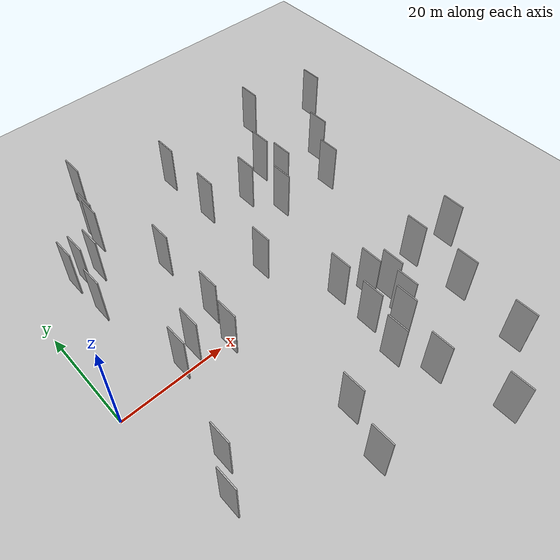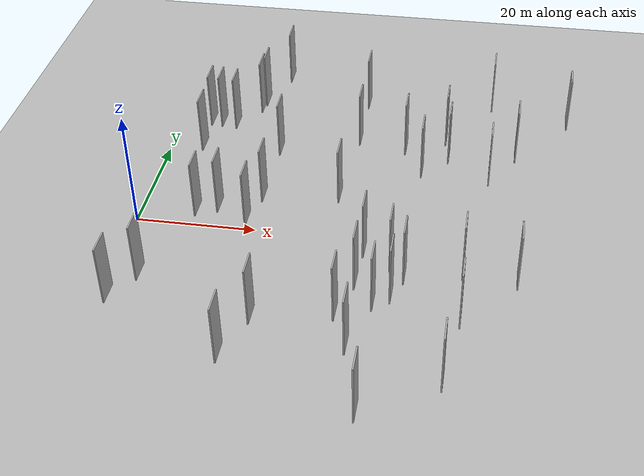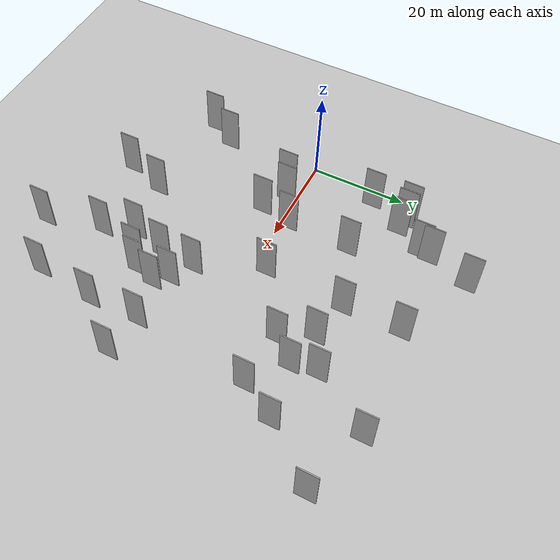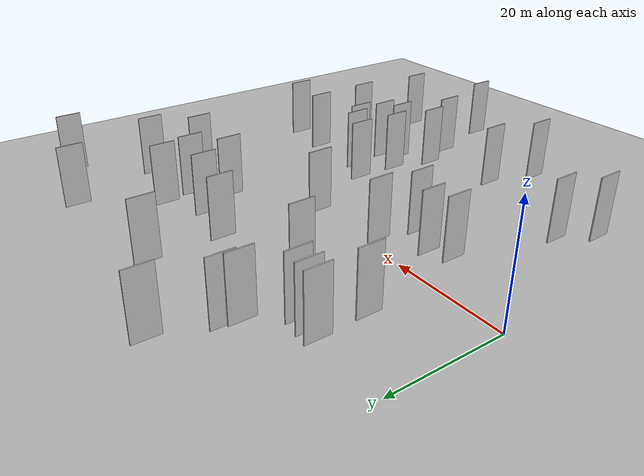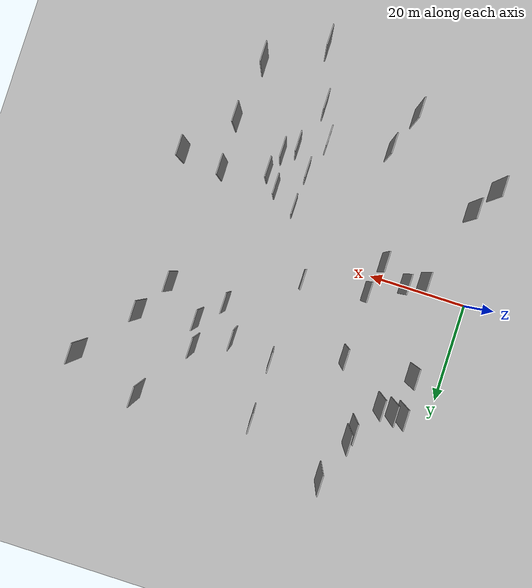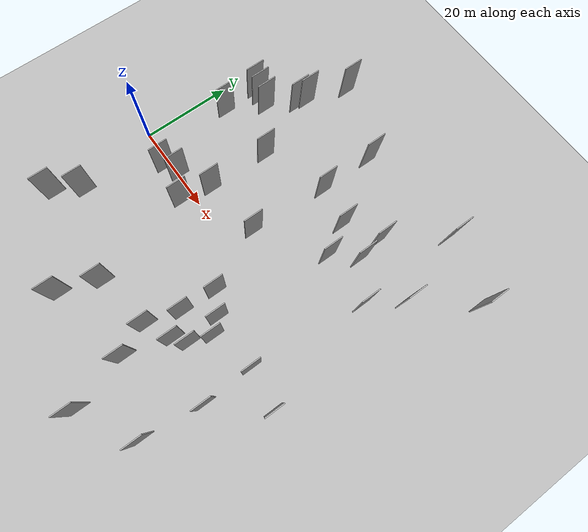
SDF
<?xml version="1.0" encoding="utf-8"?>

<sdf version="1.6">

   <world name="default">

      <gui fullscreen="0">

         <camera name="user_camera">

            <pose>-15 0 4.57585 0 0 0</pose>

            <view_controller>orbit</view_controller>

         </camera>

      </gui>

      <scene>

         <sky>

           <clouds>

             <speed>12</speed>

           </clouds>

         </sky>

         <ambient>0.4 0.4 0.4 1</ambient>

         <background>0.7 0.7 0.7 1</background>

         <shadows>1</shadows>

      </scene>

      <gravity>0 0 -9.8066</gravity>

      <magnetic_field>6e-06 2.3e-05 -4.2e-05</magnetic_field>

      <physics default="0" name="default_physics" type="ode">

         <ode>

            <solver>

               <type>quick</type>

               <iters>10</iters>

               <sor>1.0</sor>

               <use_dynamic_moi_rescaling>0</use_dynamic_moi_rescaling>

            </solver>

            <constraints>

               <cfm>0</cfm>

               <erp>0.2</erp>

               <contact_max_correcting_vel>100</contact_max_correcting_vel>

               <contact_surface_layer>0.001</contact_surface_layer>

            </constraints>

         </ode>

         <max_step_size>0.004</max_step_size>

         <real_time_factor>1</real_time_factor>

         <real_time_update_rate>250</real_time_update_rate>

      </physics>

      <light name="sun" type="directional">

         <cast_shadows>1</cast_shadows>

         <pose>0 0 10 0 0 0</pose>

         <diffuse>0.8 0.8 0.8 1</diffuse>

         <specular>0.2 0.2 0.2 1</specular>

         <attenuation>

            <range>1000</range>

            <constant>0.9</constant>

            <linear>0.01</linear>

            <quadratic>0.001</quadratic>

         </attenuation>

         <direction>-0.5 0.1 -0.9</direction>

      </light>

      <include>

         <name>ground_plane_1</name>

         <uri>model://HANNAS_ground_plane</uri>

         <pose>0 0 0  0 0 0</pose>

      </include>

      <include>

         <name>ground_plane_2</name>

         <uri>model://HANNAS_ground_plane</uri>

         <pose>100 0 0  0 0 0</pose>

      </include>

      <model name="HANNAS_wall_1">

         <static>1</static>

         <pose frame="">24.9334 -24.1360 5.0 0.000000 0.000000 1.570796</pose>

         <link name="link">

            <pose frame="">0 0 5.00 0 0 0</pose>

            <collision name="collision">

               <geometry>

                  <box>

                     <size>4.00 0.2 10.00</size>

                  </box>

               </geometry>

               <max_contacts>10</max_contacts>

               <surface>

                  <contact>

                     <ode/>

                  </contact>

                  <bounce/>

                  <friction>

                     <torsional>

                        <ode/>

                     </torsional>

                     <ode/>

                  </friction>

               </surface>

            </collision>

            <visual name="visual">

               <cast_shadows>0</cast_shadows>

               <geometry>

                  <box>

                     <size>4.00 0.2 10.00</size>

                  </box>

               </geometry>

               <material>

                  <script>

                     <uri>model://HANNAS_wall/materials/scripts</uri>

                     <uri>model://HANNAS_wall/materials/textures</uri>

                     <name>vrc/HANNAS_wall</name>

                  </script>

               </material>

            </visual>

            <self_collide>0</self_collide>

            <enable_wind>0</enable_wind>

            <kinematic>0</kinematic>

         </link>

      </model>

      <model name="HANNAS_wall_2">

         <static>1</static>

         <pose frame="">21.0418 3.3107 5.0 0.000000 0.000000 1.570796</pose>

         <link name="link">

            <pose frame="">0 0 5.00 0 0 0</pose>

            <collision name="collision">

               <geometry>

                  <box>

                     <size>4.00 0.2 10.00</size>

                  </box>

               </geometry>

               <max_contacts>10</max_contacts>

               <surface>

                  <contact>

                     <ode/>

                  </contact>

                  <bounce/>

                  <friction>

                     <torsional>

                        <ode/>

                     </torsional>

                     <ode/>

                  </friction>

               </surface>

            </collision>

            <visual name="visual">

               <cast_shadows>0</cast_shadows>

               <geometry>

                  <box>

                     <size>4.00 0.2 10.00</size>

                  </box>

               </geometry>

               <material>

                  <script>

                     <uri>model://HANNAS_wall/materials/scripts</uri>

                     <uri>model://HANNAS_wall/materials/textures</uri>

                     <name>vrc/HANNAS_wall</name>

                  </script>

               </material>

            </visual>

            <self_collide>0</self_collide>

            <enable_wind>0</enable_wind>

            <kinematic>0</kinematic>

         </link>

      </model>

      <model name="HANNAS_wall_3">

         <static>1</static>

         <pose frame="">7.9303 15.7791 5.0 0.000000 0.000000 1.570796</pose>

         <link name="link">

            <pose frame="">0 0 5.00 0 0 0</pose>

            <collision name="collision">

               <geometry>

                  <box>

                     <size>4.00 0.2 10.00</size>

                  </box>

               </geometry>

               <max_contacts>10</max_contacts>

               <surface>

                  <contact>

                     <ode/>

                  </contact>

                  <bounce/>

                  <friction>

                     <torsional>

                        <ode/>

                     </torsional>

                     <ode/>

                  </friction>

               </surface>

            </collision>

            <visual name="visual">

               <cast_shadows>0</cast_shadows>

               <geometry>

                  <box>

                     <size>4.00 0.2 10.00</size>

                  </box>

               </geometry>

               <material>

                  <script>

                     <uri>model://HANNAS_wall/materials/scripts</uri>

                     <uri>model://HANNAS_wall/materials/textures</uri>

                     <name>vrc/HANNAS_wall</name>

                  </script>

               </material>

            </visual>

            <self_collide>0</self_collide>

            <enable_wind>0</enable_wind>

            <kinematic>0</kinematic>

         </link>

      </model>

      <model name="HANNAS_wall_4">

         <static>1</static>

         <pose frame="">45.8135 13.3324 5.0 0.000000 0.000000 1.570796</pose>

         <link name="link">

            <pose frame="">0 0 5.00 0 0 0</pose>

            <collision name="collision">

               <geometry>

                  <box>

                     <size>4.00 0.2 10.00</size>

                  </box>

               </geometry>

               <max_contacts>10</max_contacts>

               <surface>

                  <contact>

                     <ode/>

                  </contact>

                  <bounce/>

                  <friction>

                     <torsional>

                        <ode/>

                     </torsional>

                     <ode/>

                  </friction>

               </surface>

            </collision>

            <visual name="visual">

               <cast_shadows>0</cast_shadows>

               <geometry>

                  <box>

                     <size>4.00 0.2 10.00</size>

                  </box>

               </geometry>

               <material>

                  <script>

                     <uri>model://HANNAS_wall/materials/scripts</uri>

                     <uri>model://HANNAS_wall/materials/textures</uri>

                     <name>vrc/HANNAS_wall</name>

                  </script>

               </material>

            </visual>

            <self_collide>0</self_collide>

            <enable_wind>0</enable_wind>

            <kinematic>0</kinematic>

         </link>

      </model>

      <model name="HANNAS_wall_5">

         <static>1</static>

         <pose frame="">43.4288 -10.3861 5.0 0.000000 0.000000 1.570796</pose>

         <link name="link">

            <pose frame="">0 0 5.00 0 0 0</pose>

            <collision name="collision">

               <geometry>

                  <box>

                     <size>4.00 0.2 10.00</size>

                  </box>

               </geometry>

               <max_contacts>10</max_contacts>

               <surface>

                  <contact>

                     <ode/>

                  </contact>

                  <bounce/>

                  <friction>

                     <torsional>

                        <ode/>

                     </torsional>

                     <ode/>

                  </friction>

               </surface>

            </collision>

            <visual name="visual">

               <cast_shadows>0</cast_shadows>

               <geometry>

                  <box>

                     <size>4.00 0.2 10.00</size>

                  </box>

               </geometry>

               <material>

                  <script>

                     <uri>model://HANNAS_wall/materials/scripts</uri>

                     <uri>model://HANNAS_wall/materials/textures</uri>

                     <name>vrc/HANNAS_wall</name>

                  </script>

               </material>

            </visual>

            <self_collide>0</self_collide>

            <enable_wind>0</enable_wind>

            <kinematic>0</kinematic>

         </link>

      </model>

      <model name="HANNAS_wall_6">

         <static>1</static>

         <pose frame="">38.7096 -15.0598 5.0 0.000000 0.000000 1.570796</pose>

         <link name="link">

            <pose frame="">0 0 5.00 0 0 0</pose>

            <collision name="collision">

               <geometry>

                  <box>

                     <size>4.00 0.2 10.00</size>

                  </box>

               </geometry>

               <max_contacts>10</max_contacts>

               <surface>

                  <contact>

                     <ode/>

                  </contact>

                  <bounce/>

                  <friction>

                     <torsional>

                        <ode/>

                     </torsional>

                     <ode/>

                  </friction>

               </surface>

            </collision>

            <visual name="visual">

               <cast_shadows>0</cast_shadows>

               <geometry>

                  <box>

                     <size>4.00 0.2 10.00</size>

                  </box>

               </geometry>

               <material>

                  <script>

                     <uri>model://HANNAS_wall/materials/scripts</uri>

                     <uri>model://HANNAS_wall/materials/textures</uri>

                     <name>vrc/HANNAS_wall</name>

                  </script>

               </material>

            </visual>

            <self_collide>0</self_collide>

            <enable_wind>0</enable_wind>

            <kinematic>0</kinematic>

         </link>

      </model>

      <model name="HANNAS_wall_7">

         <static>1</static>

         <pose frame="">15.6168 28.7492 5.0 0.000000 0.000000 1.570796</pose>

         <link name="link">

            <pose frame="">0 0 5.00 0 0 0</pose>

            <collision name="collision">

               <geometry>

                  <box>

                     <size>4.00 0.2 10.00</size>

                  </box>

               </geometry>

               <max_contacts>10</max_contacts>

               <surface>

                  <contact>

                     <ode/>

                  </contact>

                  <bounce/>

                  <friction>

                     <torsional>

                        <ode/>

                     </torsional>

                     <ode/>

                  </friction>

               </surface>

            </collision>

            <visual name="visual">

               <cast_shadows>0</cast_shadows>

               <geometry>

                  <box>

                     <size>4.00 0.2 10.00</size>

                  </box>

               </geometry>

               <material>

                  <script>

                     <uri>model://HANNAS_wall/materials/scripts</uri>

                     <uri>model://HANNAS_wall/materials/textures</uri>

                     <name>vrc/HANNAS_wall</name>

                  </script>

               </material>

            </visual>

            <self_collide>0</self_collide>

            <enable_wind>0</enable_wind>

            <kinematic>0</kinematic>

         </link>

      </model>

      <model name="HANNAS_wall_8">

         <static>1</static>

         <pose frame="">33.2793 4.7971 5.0 0.000000 0.000000 1.570796</pose>

         <link name="link">

            <pose frame="">0 0 5.00 0 0 0</pose>

            <collision name="collision">

               <geometry>

                  <box>

                     <size>4.00 0.2 10.00</size>

                  </box>

               </geometry>

               <max_contacts>10</max_contacts>

               <surface>

                  <contact>

                     <ode/>

                  </contact>

                  <bounce/>

                  <friction>

                     <torsional>

                        <ode/>

                     </torsional>

                     <ode/>

                  </friction>

               </surface>

            </collision>

            <visual name="visual">

               <cast_shadows>0</cast_shadows>

               <geometry>

                  <box>

                     <size>4.00 0.2 10.00</size>

                  </box>

               </geometry>

               <material>

                  <script>

                     <uri>model://HANNAS_wall/materials/scripts</uri>

                     <uri>model://HANNAS_wall/materials/textures</uri>

                     <name>vrc/HANNAS_wall</name>

                  </script>

               </material>

            </visual>

            <self_collide>0</self_collide>

            <enable_wind>0</enable_wind>

            <kinematic>0</kinematic>

         </link>

      </model>

      <model name="HANNAS_wall_9">

         <static>1</static>

         <pose frame="">49.1482 22.9921 5.0 0.000000 0.000000 1.570796</pose>

         <link name="link">

            <pose frame="">0 0 5.00 0 0 0</pose>

            <collision name="collision">

               <geometry>

                  <box>

                     <size>4.00 0.2 10.00</size>

                  </box>

               </geometry>

               <max_contacts>10</max_contacts>

               <surface>

                  <contact>

                     <ode/>

                  </contact>

                  <bounce/>

                  <friction>

                     <torsional>

                        <ode/>

                     </torsional>

                     <ode/>

                  </friction>

               </surface>

            </collision>

            <visual name="visual">

               <cast_shadows>0</cast_shadows>

               <geometry>

                  <box>

                     <size>4.00 0.2 10.00</size>

                  </box>

               </geometry>

               <material>

                  <script>

                     <uri>model://HANNAS_wall/materials/scripts</uri>

                     <uri>model://HANNAS_wall/materials/textures</uri>

                     <name>vrc/HANNAS_wall</name>

                  </script>

               </material>

            </visual>

            <self_collide>0</self_collide>

            <enable_wind>0</enable_wind>

            <kinematic>0</kinematic>

         </link>

      </model>

      <model name="HANNAS_wall_10">

         <static>1</static>

         <pose frame="">56.5663 34.7263 5.0 0.000000 0.000000 1.570796</pose>

         <link name="link">

            <pose frame="">0 0 5.00 0 0 0</pose>

            <collision name="collision">

               <geometry>

                  <box>

                     <size>4.00 0.2 10.00</size>

                  </box>

               </geometry>

               <max_contacts>10</max_contacts>

               <surface>

                  <contact>

                     <ode/>

                  </contact>

                  <bounce/>

                  <friction>

                     <torsional>

                        <ode/>

                     </torsional>

                     <ode/>

                  </friction>

               </surface>

            </collision>

            <visual name="visual">

               <cast_shadows>0</cast_shadows>

               <geometry>

                  <box>

                     <size>4.00 0.2 10.00</size>

                  </box>

               </geometry>

               <material>

                  <script>

                     <uri>model://HANNAS_wall/materials/scripts</uri>

                     <uri>model://HANNAS_wall/materials/textures</uri>

                     <name>vrc/HANNAS_wall</name>

                  </script>

               </material>

            </visual>

            <self_collide>0</self_collide>

            <enable_wind>0</enable_wind>

            <kinematic>0</kinematic>

         </link>

      </model>

      <model name="HANNAS_wall_11">

         <static>1</static>

         <pose frame="">49.9508 17.9340 5.0 0.000000 0.000000 1.570796</pose>

         <link name="link">

            <pose frame="">0 0 5.00 0 0 0</pose>

            <collision name="collision">

               <geometry>

                  <box>

                     <size>4.00 0.2 10.00</size>

                  </box>

               </geometry>

               <max_contacts>10</max_contacts>

               <surface>

                  <contact>

                     <ode/>

                  </contact>

                  <bounce/>

                  <friction>

                     <torsional>

                        <ode/>

                     </torsional>

                     <ode/>

                  </friction>

               </surface>

            </collision>

            <visual name="visual">

               <cast_shadows>0</cast_shadows>

               <geometry>

                  <box>

                     <size>4.00 0.2 10.00</size>

                  </box>

               </geometry>

               <material>

                  <script>

                     <uri>model://HANNAS_wall/materials/scripts</uri>

                     <uri>model://HANNAS_wall/materials/textures</uri>

                     <name>vrc/HANNAS_wall</name>

                  </script>

               </material>

            </visual>

            <self_collide>0</self_collide>

            <enable_wind>0</enable_wind>

            <kinematic>0</kinematic>

         </link>

      </model>

      <model name="HANNAS_wall_12">

         <static>1</static>

         <pose frame="">16.0333 30.9045 5.0 0.000000 0.000000 1.570796</pose>

         <link name="link">

            <pose frame="">0 0 5.00 0 0 0</pose>

            <collision name="collision">

               <geometry>

                  <box>

                     <size>4.00 0.2 10.00</size>

                  </box>

               </geometry>

               <max_contacts>10</max_contacts>

               <surface>

                  <contact>

                     <ode/>

                  </contact>

                  <bounce/>

                  <friction>

                     <torsional>

                        <ode/>

                     </torsional>

                     <ode/>

                  </friction>

               </surface>

            </collision>

            <visual name="visual">

               <cast_shadows>0</cast_shadows>

               <geometry>

                  <box>

                     <size>4.00 0.2 10.00</size>

                  </box>

               </geometry>

               <material>

                  <script>

                     <uri>model://HANNAS_wall/materials/scripts</uri>

                     <uri>model://HANNAS_wall/materials/textures</uri>

                     <name>vrc/HANNAS_wall</name>

                  </script>

               </material>

            </visual>

            <self_collide>0</self_collide>

            <enable_wind>0</enable_wind>

            <kinematic>0</kinematic>

         </link>

      </model>

      <model name="HANNAS_wall_13">

         <static>1</static>

         <pose frame="">34.4490 32.5929 5.0 0.000000 0.000000 1.570796</pose>

         <link name="link">

            <pose frame="">0 0 5.00 0 0 0</pose>

            <collision name="collision">

               <geometry>

                  <box>

                     <size>4.00 0.2 10.00</size>

                  </box>

               </geometry>

               <max_contacts>10</max_contacts>

               <surface>

                  <contact>

                     <ode/>

                  </contact>

                  <bounce/>

                  <friction>

                     <torsional>

                        <ode/>

                     </torsional>

                     <ode/>

                  </friction>

               </surface>

            </collision>

            <visual name="visual">

               <cast_shadows>0</cast_shadows>

               <geometry>

                  <box>

                     <size>4.00 0.2 10.00</size>

                  </box>

               </geometry>

               <material>

                  <script>

                     <uri>model://HANNAS_wall/materials/scripts</uri>

                     <uri>model://HANNAS_wall/materials/textures</uri>

                     <name>vrc/HANNAS_wall</name>

                  </script>

               </material>

            </visual>

            <self_collide>0</self_collide>

            <enable_wind>0</enable_wind>

            <kinematic>0</kinematic>

         </link>

      </model>

      <model name="HANNAS_wall_14">

         <static>1</static>

         <pose frame="">39.2677 -28.0688 5.0 0.000000 0.000000 1.570796</pose>

         <link name="link">

            <pose frame="">0 0 5.00 0 0 0</pose>

            <collision name="collision">

               <geometry>

                  <box>

                     <size>4.00 0.2 10.00</size>

                  </box>

               </geometry>

               <max_contacts>10</max_contacts>

               <surface>

                  <contact>

                     <ode/>

                  </contact>

                  <bounce/>

                  <friction>

                     <torsional>

                        <ode/>

                     </torsional>

                     <ode/>

                  </friction>

               </surface>

            </collision>

            <visual name="visual">

               <cast_shadows>0</cast_shadows>

               <geometry>

                  <box>

                     <size>4.00 0.2 10.00</size>

                  </box>

               </geometry>

               <material>

                  <script>

                     <uri>model://HANNAS_wall/materials/scripts</uri>

                     <uri>model://HANNAS_wall/materials/textures</uri>

                     <name>vrc/HANNAS_wall</name>

                  </script>

               </material>

            </visual>

            <self_collide>0</self_collide>

            <enable_wind>0</enable_wind>

            <kinematic>0</kinematic>

         </link>

      </model>

      <model name="HANNAS_wall_15">

         <static>1</static>

         <pose frame="">61.1426 19.7919 5.0 0.000000 0.000000 1.570796</pose>

         <link name="link">

            <pose frame="">0 0 5.00 0 0 0</pose>

            <collision name="collision">

               <geometry>

                  <box>

                     <size>4.00 0.2 10.00</size>

                  </box>

               </geometry>

               <max_contacts>10</max_contacts>

               <surface>

                  <contact>

                     <ode/>

                  </contact>

                  <bounce/>

                  <friction>

                     <torsional>

                        <ode/>

                     </torsional>

                     <ode/>

                  </friction>

               </surface>

            </collision>

            <visual name="visual">

               <cast_shadows>0</cast_shadows>

               <geometry>

                  <box>

                     <size>4.00 0.2 10.00</size>

                  </box>

               </geometry>

               <material>

                  <script>

                     <uri>model://HANNAS_wall/materials/scripts</uri>

                     <uri>model://HANNAS_wall/materials/textures</uri>

                     <name>vrc/HANNAS_wall</name>

                  </script>

               </material>

            </visual>

            <self_collide>0</self_collide>

            <enable_wind>0</enable_wind>

            <kinematic>0</kinematic>

         </link>

      </model>

      <model name="HANNAS_wall_16">

         <static>1</static>

         <pose frame="">54.6031 -20.7735 5.0 0.000000 0.000000 1.570796</pose>

         <link name="link">

            <pose frame="">0 0 5.00 0 0 0</pose>

            <collision name="collision">

               <geometry>

                  <box>

                     <size>4.00 0.2 10.00</size>

                  </box>

               </geometry>

               <max_contacts>10</max_contacts>

               <surface>

                  <contact>

                     <ode/>

                  </contact>

                  <bounce/>

                  <friction>

                     <torsional>

                        <ode/>

                     </torsional>

                     <ode/>

                  </friction>

               </surface>

            </collision>

            <visual name="visual">

               <cast_shadows>0</cast_shadows>

               <geometry>

                  <box>

                     <size>4.00 0.2 10.00</size>

                  </box>

               </geometry>

               <material>

                  <script>

                     <uri>model://HANNAS_wall/materials/scripts</uri>

                     <uri>model://HANNAS_wall/materials/textures</uri>

                     <name>vrc/HANNAS_wall</name>

                  </script>

               </material>

            </visual>

            <self_collide>0</self_collide>

            <enable_wind>0</enable_wind>

            <kinematic>0</kinematic>

         </link>

      </model>

      <model name="HANNAS_wall_17">

         <static>1</static>

         <pose frame="">12.1408 23.0404 5.0 0.000000 0.000000 1.570796</pose>

         <link name="link">

            <pose frame="">0 0 5.00 0 0 0</pose>

            <collision name="collision">

               <geometry>

                  <box>

                     <size>4.00 0.2 10.00</size>

                  </box>

               </geometry>

               <max_contacts>10</max_contacts>

               <surface>

                  <contact>

                     <ode/>

                  </contact>

                  <bounce/>

                  <friction>

                     <torsional>

                        <ode/>

                     </torsional>

                     <ode/>

                  </friction>

               </surface>

            </collision>

            <visual name="visual">

               <cast_shadows>0</cast_shadows>

               <geometry>

                  <box>

                     <size>4.00 0.2 10.00</size>

                  </box>

               </geometry>

               <material>

                  <script>

                     <uri>model://HANNAS_wall/materials/scripts</uri>

                     <uri>model://HANNAS_wall/materials/textures</uri>

                     <name>vrc/HANNAS_wall</name>

                  </script>

               </material>

            </visual>

            <self_collide>0</self_collide>

            <enable_wind>0</enable_wind>

            <kinematic>0</kinematic>

         </link>

      </model>

      <model name="HANNAS_wall_18">

         <static>1</static>

         <pose frame="">62.4654 -11.7298 5.0 0.000000 0.000000 1.570796</pose>

         <link name="link">

            <pose frame="">0 0 5.00 0 0 0</pose>

            <collision name="collision">

               <geometry>

                  <box>

                     <size>4.00 0.2 10.00</size>

                  </box>

               </geometry>

               <max_contacts>10</max_contacts>

               <surface>

                  <contact>

                     <ode/>

                  </contact>

                  <bounce/>

                  <friction>

                     <torsional>

                        <ode/>

                     </torsional>

                     <ode/>

                  </friction>

               </surface>

            </collision>

            <visual name="visual">

               <cast_shadows>0</cast_shadows>

               <geometry>

                  <box>

                     <size>4.00 0.2 10.00</size>

                  </box>

               </geometry>

               <material>

                  <script>

                     <uri>model://HANNAS_wall/materials/scripts</uri>

                     <uri>model://HANNAS_wall/materials/textures</uri>

                     <name>vrc/HANNAS_wall</name>

                  </script>

               </material>

            </visual>

            <self_collide>0</self_collide>

            <enable_wind>0</enable_wind>

            <kinematic>0</kinematic>

         </link>

      </model>

      <model name="HANNAS_wall_19">

         <static>1</static>

         <pose frame="">39.0457 -7.8593 5.0 0.000000 0.000000 1.570796</pose>

         <link name="link">

            <pose frame="">0 0 5.00 0 0 0</pose>

            <collision name="collision">

               <geometry>

                  <box>

                     <size>4.00 0.2 10.00</size>

                  </box>

               </geometry>

               <max_contacts>10</max_contacts>

               <surface>

                  <contact>

                     <ode/>

                  </contact>

                  <bounce/>

                  <friction>

                     <torsional>

                        <ode/>

                     </torsional>

                     <ode/>

                  </friction>

               </surface>

            </collision>

            <visual name="visual">

               <cast_shadows>0</cast_shadows>

               <geometry>

                  <box>

                     <size>4.00 0.2 10.00</size>

                  </box>

               </geometry>

               <material>

                  <script>

                     <uri>model://HANNAS_wall/materials/scripts</uri>

                     <uri>model://HANNAS_wall/materials/textures</uri>

                     <name>vrc/HANNAS_wall</name>

                  </script>

               </material>

            </visual>

            <self_collide>0</self_collide>

            <enable_wind>0</enable_wind>

            <kinematic>0</kinematic>

         </link>

      </model>

      <model name="HANNAS_wall_20">

         <static>1</static>

         <pose frame="">9.5559 23.3455 5.0 0.000000 0.000000 1.570796</pose>

         <link name="link">

            <pose frame="">0 0 5.00 0 0 0</pose>

            <collision name="collision">

               <geometry>

                  <box>

                     <size>4.00 0.2 10.00</size>

                  </box>

               </geometry>

               <max_contacts>10</max_contacts>

               <surface>

                  <contact>

                     <ode/>

                  </contact>

                  <bounce/>

                  <friction>

                     <torsional>

                        <ode/>

                     </torsional>

                     <ode/>

                  </friction>

               </surface>

            </collision>

            <visual name="visual">

               <cast_shadows>0</cast_shadows>

               <geometry>

                  <box>

                     <size>4.00 0.2 10.00</size>

                  </box>

               </geometry>

               <material>

                  <script>

                     <uri>model://HANNAS_wall/materials/scripts</uri>

                     <uri>model://HANNAS_wall/materials/textures</uri>

                     <name>vrc/HANNAS_wall</name>

                  </script>

               </material>

            </visual>

            <self_collide>0</self_collide>

            <enable_wind>0</enable_wind>

            <kinematic>0</kinematic>

         </link>

      </model>

      <model name="HANNAS_wall_21">

         <static>1</static>

         <pose frame="">19.6417 -3.0425 5.0 0.000000 0.000000 1.570796</pose>

         <link name="link">

            <pose frame="">0 0 5.00 0 0 0</pose>

            <collision name="collision">

               <geometry>

                  <box>

                     <size>4.00 0.2 10.00</size>

                  </box>

               </geometry>

               <max_contacts>10</max_contacts>

               <surface>

                  <contact>

                     <ode/>

                  </contact>

                  <bounce/>

                  <friction>

                     <torsional>

                        <ode/>

                     </torsional>

                     <ode/>

                  </friction>

               </surface>

            </collision>

            <visual name="visual">

               <cast_shadows>0</cast_shadows>

               <geometry>

                  <box>

                     <size>4.00 0.2 10.00</size>

                  </box>

               </geometry>

               <material>

                  <script>

                     <uri>model://HANNAS_wall/materials/scripts</uri>

                     <uri>model://HANNAS_wall/materials/textures</uri>

                     <name>vrc/HANNAS_wall</name>

                  </script>

               </material>

            </visual>

            <self_collide>0</self_collide>

            <enable_wind>0</enable_wind>

            <kinematic>0</kinematic>

         </link>

      </model>

      <model name="HANNAS_wall_22">

         <static>1</static>

         <pose frame="">22.1229 -31.9773 5.0 0.000000 0.000000 1.570796</pose>

         <link name="link">

            <pose frame="">0 0 5.00 0 0 0</pose>

            <collision name="collision">

               <geometry>

                  <box>

                     <size>4.00 0.2 10.00</size>

                  </box>

               </geometry>

               <max_contacts>10</max_contacts>

               <surface>

                  <contact>

                     <ode/>

                  </contact>

                  <bounce/>

                  <friction>

                     <torsional>

                        <ode/>

                     </torsional>

                     <ode/>

                  </friction>

               </surface>

            </collision>

            <visual name="visual">

               <cast_shadows>0</cast_shadows>

               <geometry>

                  <box>

                     <size>4.00 0.2 10.00</size>

                  </box>

               </geometry>

               <material>

                  <script>

                     <uri>model://HANNAS_wall/materials/scripts</uri>

                     <uri>model://HANNAS_wall/materials/textures</uri>

                     <name>vrc/HANNAS_wall</name>

                  </script>

               </material>

            </visual>

            <self_collide>0</self_collide>

            <enable_wind>0</enable_wind>

            <kinematic>0</kinematic>

         </link>

      </model>

      <model name="HANNAS_wall_23">

         <static>1</static>

         <pose frame="">42.2569 -39.5623 5.0 0.000000 0.000000 1.570796</pose>

         <link name="link">

            <pose frame="">0 0 5.00 0 0 0</pose>

            <collision name="collision">

               <geometry>

                  <box>

                     <size>4.00 0.2 10.00</size>

                  </box>

               </geometry>

               <max_contacts>10</max_contacts>

               <surface>

                  <contact>

                     <ode/>

                  </contact>

                  <bounce/>

                  <friction>

                     <torsional>

                        <ode/>

                     </torsional>

                     <ode/>

                  </friction>

               </surface>

            </collision>

            <visual name="visual">

               <cast_shadows>0</cast_shadows>

               <geometry>

                  <box>

                     <size>4.00 0.2 10.00</size>

                  </box>

               </geometry>

               <material>

                  <script>

                     <uri>model://HANNAS_wall/materials/scripts</uri>

                     <uri>model://HANNAS_wall/materials/textures</uri>

                     <name>vrc/HANNAS_wall</name>

                  </script>

               </material>

            </visual>

            <self_collide>0</self_collide>

            <enable_wind>0</enable_wind>

            <kinematic>0</kinematic>

         </link>

      </model>

      <model name="HANNAS_wall_24">

         <static>1</static>

         <pose frame="">18.9084 39.4700 5.0 0.000000 0.000000 1.570796</pose>

         <link name="link">

            <pose frame="">0 0 5.00 0 0 0</pose>

            <collision name="collision">

               <geometry>

                  <box>

                     <size>4.00 0.2 10.00</size>

                  </box>

               </geometry>

               <max_contacts>10</max_contacts>

               <surface>

                  <contact>

                     <ode/>

                  </contact>

                  <bounce/>

                  <friction>

                     <torsional>

                        <ode/>

                     </torsional>

                     <ode/>

                  </friction>

               </surface>

            </collision>

            <visual name="visual">

               <cast_shadows>0</cast_shadows>

               <geometry>

                  <box>

                     <size>4.00 0.2 10.00</size>

                  </box>

               </geometry>

               <material>

                  <script>

                     <uri>model://HANNAS_wall/materials/scripts</uri>

                     <uri>model://HANNAS_wall/materials/textures</uri>

                     <name>vrc/HANNAS_wall</name>

                  </script>

               </material>

            </visual>

            <self_collide>0</self_collide>

            <enable_wind>0</enable_wind>

            <kinematic>0</kinematic>

         </link>

      </model>

      <model name="HANNAS_wall_25">

         <static>1</static>

         <pose frame="">53.0624 -32.8747 5.0 0.000000 0.000000 1.570796</pose>

         <link name="link">

            <pose frame="">0 0 5.00 0 0 0</pose>

            <collision name="collision">

               <geometry>

                  <box>

                     <size>4.00 0.2 10.00</size>

                  </box>

               </geometry>

               <max_contacts>10</max_contacts>

               <surface>

                  <contact>

                     <ode/>

                  </contact>

                  <bounce/>

                  <friction>

                     <torsional>

                        <ode/>

                     </torsional>

                     <ode/>

                  </friction>

               </surface>

            </collision>

            <visual name="visual">

               <cast_shadows>0</cast_shadows>

               <geometry>

                  <box>

                     <size>4.00 0.2 10.00</size>

                  </box>

               </geometry>

               <material>

                  <script>

                     <uri>model://HANNAS_wall/materials/scripts</uri>

                     <uri>model://HANNAS_wall/materials/textures</uri>

                     <name>vrc/HANNAS_wall</name>

                  </script>

               </material>

            </visual>

            <self_collide>0</self_collide>

            <enable_wind>0</enable_wind>

            <kinematic>0</kinematic>

         </link>

      </model>

      <model name="HANNAS_wall_26">

         <static>1</static>

         <pose frame="">7.6279 23.4712 5.0 0.000000 0.000000 1.570796</pose>

         <link name="link">

            <pose frame="">0 0 5.00 0 0 0</pose>

            <collision name="collision">

               <geometry>

                  <box>

                     <size>4.00 0.2 10.00</size>

                  </box>

               </geometry>

               <max_contacts>10</max_contacts>

               <surface>

                  <contact>

                     <ode/>

                  </contact>

                  <bounce/>

                  <friction>

                     <torsional>

                        <ode/>

                     </torsional>

                     <ode/>

                  </friction>

               </surface>

            </collision>

            <visual name="visual">

               <cast_shadows>0</cast_shadows>

               <geometry>

                  <box>

                     <size>4.00 0.2 10.00</size>

                  </box>

               </geometry>

               <material>

                  <script>

                     <uri>model://HANNAS_wall/materials/scripts</uri>

                     <uri>model://HANNAS_wall/materials/textures</uri>

                     <name>vrc/HANNAS_wall</name>

                  </script>

               </material>

            </visual>

            <self_collide>0</self_collide>

            <enable_wind>0</enable_wind>

            <kinematic>0</kinematic>

         </link>

      </model>

      <model name="HANNAS_wall_27">

         <static>1</static>

         <pose frame="">3.3001 -22.7994 5.0 0.000000 0.000000 1.570796</pose>

         <link name="link">

            <pose frame="">0 0 5.00 0 0 0</pose>

            <collision name="collision">

               <geometry>

                  <box>

                     <size>4.00 0.2 10.00</size>

                  </box>

               </geometry>

               <max_contacts>10</max_contacts>

               <surface>

                  <contact>

                     <ode/>

                  </contact>

                  <bounce/>

                  <friction>

                     <torsional>

                        <ode/>

                     </torsional>

                     <ode/>

                  </friction>

               </surface>

            </collision>

            <visual name="visual">

               <cast_shadows>0</cast_shadows>

               <geometry>

                  <box>

                     <size>4.00 0.2 10.00</size>

                  </box>

               </geometry>

               <material>

                  <script>

                     <uri>model://HANNAS_wall/materials/scripts</uri>

                     <uri>model://HANNAS_wall/materials/textures</uri>

                     <name>vrc/HANNAS_wall</name>

                  </script>

               </material>

            </visual>

            <self_collide>0</self_collide>

            <enable_wind>0</enable_wind>

            <kinematic>0</kinematic>

         </link>

      </model>

      <model name="HANNAS_wall_28">

         <static>1</static>

         <pose frame="">21.3265 16.2888 5.0 0.000000 0.000000 1.570796</pose>

         <link name="link">

            <pose frame="">0 0 5.00 0 0 0</pose>

            <collision name="collision">

               <geometry>

                  <box>

                     <size>4.00 0.2 10.00</size>

                  </box>

               </geometry>

               <max_contacts>10</max_contacts>

               <surface>

                  <contact>

                     <ode/>

                  </contact>

                  <bounce/>

                  <friction>

                     <torsional>

                        <ode/>

                     </torsional>

                     <ode/>

                  </friction>

               </surface>

            </collision>

            <visual name="visual">

               <cast_shadows>0</cast_shadows>

               <geometry>

                  <box>

                     <size>4.00 0.2 10.00</size>

                  </box>

               </geometry>

               <material>

                  <script>

                     <uri>model://HANNAS_wall/materials/scripts</uri>

                     <uri>model://HANNAS_wall/materials/textures</uri>

                     <name>vrc/HANNAS_wall</name>

                  </script>

               </material>

            </visual>

            <self_collide>0</self_collide>

            <enable_wind>0</enable_wind>

            <kinematic>0</kinematic>

         </link>

      </model>

      <model name="HANNAS_wall_29">

         <static>1</static>

         <pose frame="">57.0084 12.7701 5.0 0.000000 0.000000 1.570796</pose>

         <link name="link">

            <pose frame="">0 0 5.00 0 0 0</pose>

            <collision name="collision">

               <geometry>

                  <box>

                     <size>4.00 0.2 10.00</size>

                  </box>

               </geometry>

               <max_contacts>10</max_contacts>

               <surface>

                  <contact>

                     <ode/>

                  </contact>

                  <bounce/>

                  <friction>

                     <torsional>

                        <ode/>

                     </torsional>

                     <ode/>

                  </friction>

               </surface>

            </collision>

            <visual name="visual">

               <cast_shadows>0</cast_shadows>

               <geometry>

                  <box>

                     <size>4.00 0.2 10.00</size>

                  </box>

               </geometry>

               <material>

                  <script>

                     <uri>model://HANNAS_wall/materials/scripts</uri>

                     <uri>model://HANNAS_wall/materials/textures</uri>

                     <name>vrc/HANNAS_wall</name>

                  </script>

               </material>

            </visual>

            <self_collide>0</self_collide>

            <enable_wind>0</enable_wind>

            <kinematic>0</kinematic>

         </link>

      </model>

      <model name="HANNAS_wall_30">

         <static>1</static>

         <pose frame="">34.4512 21.0657 5.0 0.000000 0.000000 1.570796</pose>

         <link name="link">

            <pose frame="">0 0 5.00 0 0 0</pose>

            <collision name="collision">

               <geometry>

                  <box>

                     <size>4.00 0.2 10.00</size>

                  </box>

               </geometry>

               <max_contacts>10</max_contacts>

               <surface>

                  <contact>

                     <ode/>

                  </contact>

                  <bounce/>

                  <friction>

                     <torsional>

                        <ode/>

                     </torsional>

                     <ode/>

                  </friction>

               </surface>

            </collision>

            <visual name="visual">

               <cast_shadows>0</cast_shadows>

               <geometry>

                  <box>

                     <size>4.00 0.2 10.00</size>

                  </box>

               </geometry>

               <material>

                  <script>

                     <uri>model://HANNAS_wall/materials/scripts</uri>

                     <uri>model://HANNAS_wall/materials/textures</uri>

                     <name>vrc/HANNAS_wall</name>

                  </script>

               </material>

            </visual>

            <self_collide>0</self_collide>

            <enable_wind>0</enable_wind>

            <kinematic>0</kinematic>

         </link>

      </model>

      <model name="HANNAS_wall_31">

         <static>1</static>

         <pose frame="">42.5054 19.4000 5.0 0.000000 0.000000 1.570796</pose>

         <link name="link">

            <pose frame="">0 0 5.00 0 0 0</pose>

            <collision name="collision">

               <geometry>

                  <box>

                     <size>4.00 0.2 10.00</size>

                  </box>

               </geometry>

               <max_contacts>10</max_contacts>

               <surface>

                  <contact>

                     <ode/>

                  </contact>

                  <bounce/>

                  <friction>

                     <torsional>

                        <ode/>

                     </torsional>

                     <ode/>

                  </friction>

               </surface>

            </collision>

            <visual name="visual">

               <cast_shadows>0</cast_shadows>

               <geometry>

                  <box>

                     <size>4.00 0.2 10.00</size>

                  </box>

               </geometry>

               <material>

                  <script>

                     <uri>model://HANNAS_wall/materials/scripts</uri>

                     <uri>model://HANNAS_wall/materials/textures</uri>

                     <name>vrc/HANNAS_wall</name>

                  </script>

               </material>

            </visual>

            <self_collide>0</self_collide>

            <enable_wind>0</enable_wind>

            <kinematic>0</kinematic>

         </link>

      </model>

      <model name="HANNAS_wall_32">

         <static>1</static>

         <pose frame="">44.2521 -17.1879 5.0 0.000000 0.000000 1.570796</pose>

         <link name="link">

            <pose frame="">0 0 5.00 0 0 0</pose>

            <collision name="collision">

               <geometry>

                  <box>

                     <size>4.00 0.2 10.00</size>

                  </box>

               </geometry>

               <max_contacts>10</max_contacts>

               <surface>

                  <contact>

                     <ode/>

                  </contact>

                  <bounce/>

                  <friction>

                     <torsional>

                        <ode/>

                     </torsional>

                     <ode/>

                  </friction>

               </surface>

            </collision>

            <visual name="visual">

               <cast_shadows>0</cast_shadows>

               <geometry>

                  <box>

                     <size>4.00 0.2 10.00</size>

                  </box>

               </geometry>

               <material>

                  <script>

                     <uri>model://HANNAS_wall/materials/scripts</uri>

                     <uri>model://HANNAS_wall/materials/textures</uri>

                     <name>vrc/HANNAS_wall</name>

                  </script>

               </material>

            </visual>

            <self_collide>0</self_collide>

            <enable_wind>0</enable_wind>

            <kinematic>0</kinematic>

         </link>

      </model>

      <model name="HANNAS_wall_33">

         <static>1</static>

         <pose frame="">11.2180 -1.6952 5.0 0.000000 0.000000 1.570796</pose>

         <link name="link">

            <pose frame="">0 0 5.00 0 0 0</pose>

            <collision name="collision">

               <geometry>

                  <box>

                     <size>4.00 0.2 10.00</size>

                  </box>

               </geometry>

               <max_contacts>10</max_contacts>

               <surface>

                  <contact>

                     <ode/>

                  </contact>

                  <bounce/>

                  <friction>

                     <torsional>

                        <ode/>

                     </torsional>

                     <ode/>

                  </friction>

               </surface>

            </collision>

            <visual name="visual">

               <cast_shadows>0</cast_shadows>

               <geometry>

                  <box>

                     <size>4.00 0.2 10.00</size>

                  </box>

               </geometry>

               <material>

                  <script>

                     <uri>model://HANNAS_wall/materials/scripts</uri>

                     <uri>model://HANNAS_wall/materials/textures</uri>

                     <name>vrc/HANNAS_wall</name>

                  </script>

               </material>

            </visual>

            <self_collide>0</self_collide>

            <enable_wind>0</enable_wind>

            <kinematic>0</kinematic>

         </link>

      </model>

      <model name="HANNAS_wall_34">

         <static>1</static>

         <pose frame="">36.7266 -21.8203 5.0 0.000000 0.000000 1.570796</pose>

         <link name="link">

            <pose frame="">0 0 5.00 0 0 0</pose>

            <collision name="collision">

               <geometry>

                  <box>

                     <size>4.00 0.2 10.00</size>

                  </box>

               </geometry>

               <max_contacts>10</max_contacts>

               <surface>

                  <contact>

                     <ode/>

                  </contact>

                  <bounce/>

                  <friction>

                     <torsional>

                        <ode/>

                     </torsional>

                     <ode/>

                  </friction>

               </surface>

            </collision>

            <visual name="visual">

               <cast_shadows>0</cast_shadows>

               <geometry>

                  <box>

                     <size>4.00 0.2 10.00</size>

                  </box>

               </geometry>

               <material>

                  <script>

                     <uri>model://HANNAS_wall/materials/scripts</uri>

                     <uri>model://HANNAS_wall/materials/textures</uri>

                     <name>vrc/HANNAS_wall</name>

                  </script>

               </material>

            </visual>

            <self_collide>0</self_collide>

            <enable_wind>0</enable_wind>

            <kinematic>0</kinematic>

         </link>

      </model>

      <model name="HANNAS_wall_35">

         <static>1</static>

         <pose frame="">41.8432 -19.1204 5.0 0.000000 0.000000 1.570796</pose>

         <link name="link">

            <pose frame="">0 0 5.00 0 0 0</pose>

            <collision name="collision">

               <geometry>

                  <box>

                     <size>4.00 0.2 10.00</size>

                  </box>

               </geometry>

               <max_contacts>10</max_contacts>

               <surface>

                  <contact>

                     <ode/>

                  </contact>

                  <bounce/>

                  <friction>

                     <torsional>

                        <ode/>

                     </torsional>

                     <ode/>

                  </friction>

               </surface>

            </collision>

            <visual name="visual">

               <cast_shadows>0</cast_shadows>

               <geometry>

                  <box>

                     <size>4.00 0.2 10.00</size>

                  </box>

               </geometry>

               <material>

                  <script>

                     <uri>model://HANNAS_wall/materials/scripts</uri>

                     <uri>model://HANNAS_wall/materials/textures</uri>

                     <name>vrc/HANNAS_wall</name>

                  </script>

               </material>

            </visual>

            <self_collide>0</self_collide>

            <enable_wind>0</enable_wind>

            <kinematic>0</kinematic>

         </link>

      </model>

      <model name="HANNAS_wall_36">

         <static>1</static>

         <pose frame="">6.5026 -17.5276 5.0 0.000000 0.000000 1.570796</pose>

         <link name="link">

            <pose frame="">0 0 5.00 0 0 0</pose>

            <collision name="collision">

               <geometry>

                  <box>

                     <size>4.00 0.2 10.00</size>

                  </box>

               </geometry>

               <max_contacts>10</max_contacts>

               <surface>

                  <contact>

                     <ode/>

                  </contact>

                  <bounce/>

                  <friction>

                     <torsional>

                        <ode/>

                     </torsional>

                     <ode/>

                  </friction>

               </surface>

            </collision>

            <visual name="visual">

               <cast_shadows>0</cast_shadows>

               <geometry>

                  <box>

                     <size>4.00 0.2 10.00</size>

                  </box>

               </geometry>

               <material>

                  <script>

                     <uri>model://HANNAS_wall/materials/scripts</uri>

                     <uri>model://HANNAS_wall/materials/textures</uri>

                     <name>vrc/HANNAS_wall</name>

                  </script>

               </material>

            </visual>

            <self_collide>0</self_collide>

            <enable_wind>0</enable_wind>

            <kinematic>0</kinematic>

         </link>

      </model>

      <model name="HANNAS_wall_37">

         <static>1</static>

         <pose frame="">54.3203 -10.6576 5.0 0.000000 0.000000 1.570796</pose>

         <link name="link">

            <pose frame="">0 0 5.00 0 0 0</pose>

            <collision name="collision">

               <geometry>

                  <box>

                     <size>4.00 0.2 10.00</size>

                  </box>

               </geometry>

               <max_contacts>10</max_contacts>

               <surface>

                  <contact>

                     <ode/>

                  </contact>

                  <bounce/>

                  <friction>

                     <torsional>

                        <ode/>

                     </torsional>

                     <ode/>

                  </friction>

               </surface>

            </collision>

            <visual name="visual">

               <cast_shadows>0</cast_shadows>

               <geometry>

                  <box>

                     <size>4.00 0.2 10.00</size>

                  </box>

               </geometry>

               <material>

                  <script>

                     <uri>model://HANNAS_wall/materials/scripts</uri>

                     <uri>model://HANNAS_wall/materials/textures</uri>

                     <name>vrc/HANNAS_wall</name>

                  </script>

               </material>

            </visual>

            <self_collide>0</self_collide>

            <enable_wind>0</enable_wind>

            <kinematic>0</kinematic>

         </link>

      </model>

      <model name="HANNAS_wall_38">

         <static>1</static>

         <pose frame="">14.5233 -0.2872 5.0 0.000000 0.000000 1.570796</pose>

         <link name="link">

            <pose frame="">0 0 5.00 0 0 0</pose>

            <collision name="collision">

               <geometry>

                  <box>

                     <size>4.00 0.2 10.00</size>

                  </box>

               </geometry>

               <max_contacts>10</max_contacts>

               <surface>

                  <contact>

                     <ode/>

                  </contact>

                  <bounce/>

                  <friction>

                     <torsional>

                        <ode/>

                     </torsional>

                     <ode/>

                  </friction>

               </surface>

            </collision>

            <visual name="visual">

               <cast_shadows>0</cast_shadows>

               <geometry>

                  <box>

                     <size>4.00 0.2 10.00</size>

                  </box>

               </geometry>

               <material>

                  <script>

                     <uri>model://HANNAS_wall/materials/scripts</uri>

                     <uri>model://HANNAS_wall/materials/textures</uri>

                     <name>vrc/HANNAS_wall</name>

                  </script>

               </material>

            </visual>

            <self_collide>0</self_collide>

            <enable_wind>0</enable_wind>

            <kinematic>0</kinematic>

         </link>

      </model>

      <model name="HANNAS_wall_39">

         <static>1</static>

         <pose frame="">45.7271 -12.9109 5.0 0.000000 0.000000 1.570796</pose>

         <link name="link">

            <pose frame="">0 0 5.00 0 0 0</pose>

            <collision name="collision">

               <geometry>

                  <box>

                     <size>4.00 0.2 10.00</size>

                  </box>

               </geometry>

               <max_contacts>10</max_contacts>

               <surface>

                  <contact>

                     <ode/>

                  </contact>

                  <bounce/>

                  <friction>

                     <torsional>

                        <ode/>

                     </torsional>

                     <ode/>

                  </friction>

               </surface>

            </collision>

            <visual name="visual">

               <cast_shadows>0</cast_shadows>

               <geometry>

                  <box>

                     <size>4.00 0.2 10.00</size>

                  </box>

               </geometry>

               <material>

                  <script>

                     <uri>model://HANNAS_wall/materials/scripts</uri>

                     <uri>model://HANNAS_wall/materials/textures</uri>

                     <name>vrc/HANNAS_wall</name>

                  </script>

               </material>

            </visual>

            <self_collide>0</self_collide>

            <enable_wind>0</enable_wind>

            <kinematic>0</kinematic>

         </link>

      </model>

      <model name="HANNAS_wall_40">

         <static>1</static>

         <pose frame="">69.8273 30.6831 5.0 0.000000 0.000000 1.570796</pose>

         <link name="link">

            <pose frame="">0 0 5.00 0 0 0</pose>

            <collision name="collision">

               <geometry>

                  <box>

                     <size>4.00 0.2 10.00</size>

                  </box>

               </geometry>

               <max_contacts>10</max_contacts>

               <surface>

                  <contact>

                     <ode/>

                  </contact>

                  <bounce/>

                  <friction>

                     <torsional>

                        <ode/>

                     </torsional>

                     <ode/>

                  </friction>

               </surface>

            </collision>

            <visual name="visual">

               <cast_shadows>0</cast_shadows>

               <geometry>

                  <box>

                     <size>4.00 0.2 10.00</size>

                  </box>

               </geometry>

               <material>

                  <script>

                     <uri>model://HANNAS_wall/materials/scripts</uri>

                     <uri>model://HANNAS_wall/materials/textures</uri>

                     <name>vrc/HANNAS_wall</name>

                  </script>

               </material>

            </visual>

            <self_collide>0</self_collide>

            <enable_wind>0</enable_wind>

            <kinematic>0</kinematic>

         </link>

      </model>

   </world>

</sdf>
